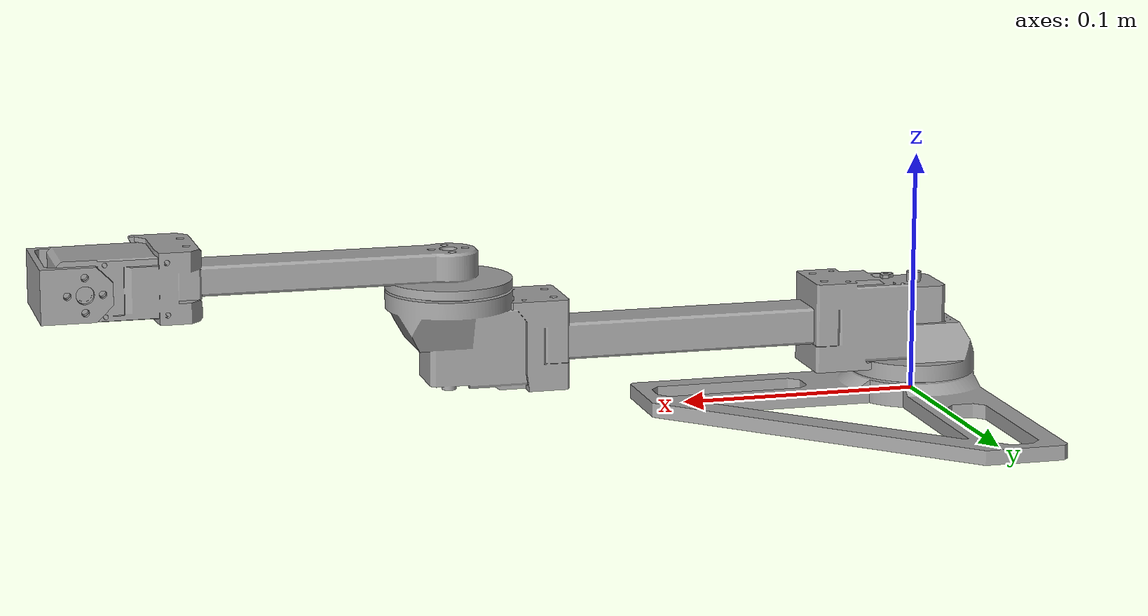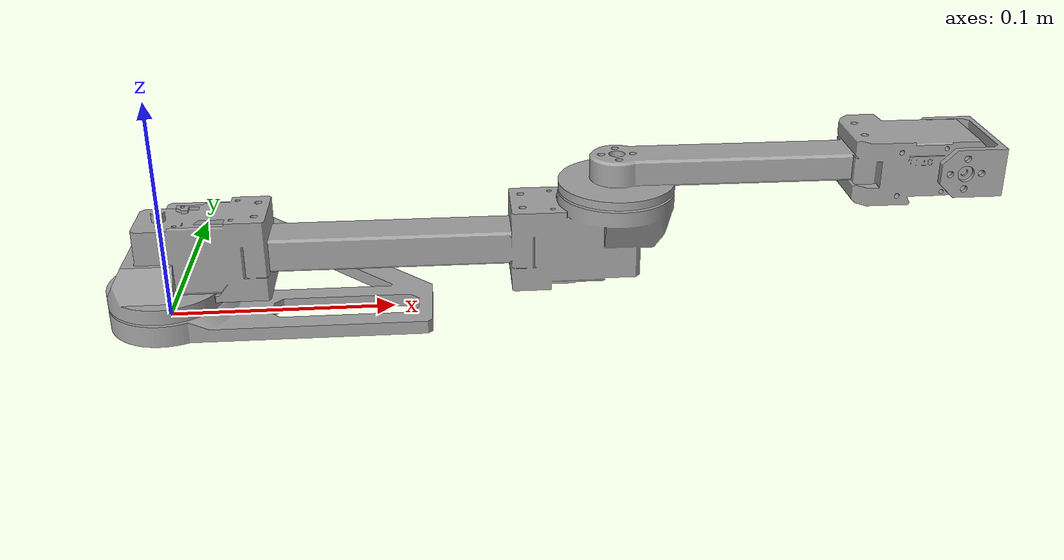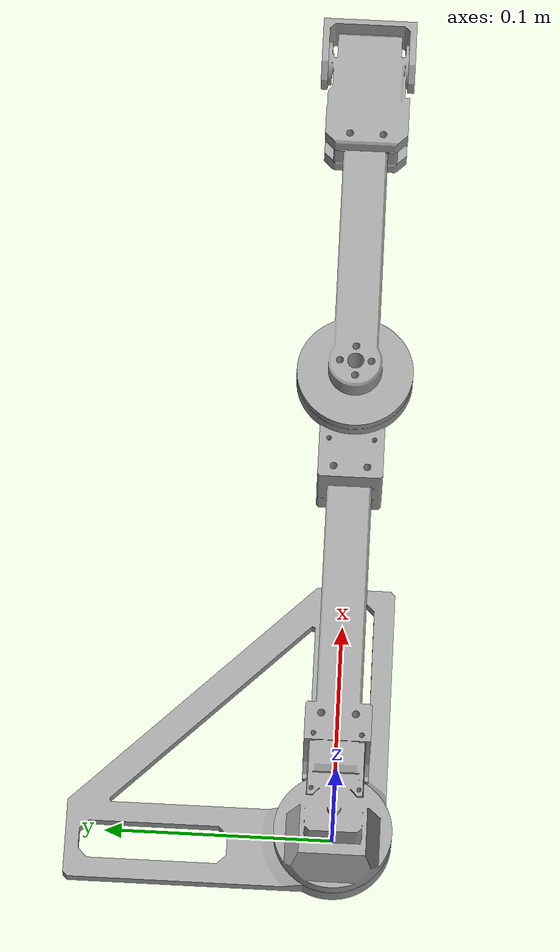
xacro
<?xml version="1.0" ?>
<robot name="bsl_plotter2" xmlns:xacro="http://www.ros.org/wiki/xacro">

<xacro:include filename="$(find bsl_plotter2_description)/urdf/materials.xacro" />
<xacro:include filename="$(find bsl_plotter2_description)/urdf/bsl_plotter2.trans" />
<xacro:include filename="$(find bsl_plotter2_description)/urdf/bsl_plotter2.gazebo" />
<link name="base_link">
  <inertial>
    <origin xyz="0.02576751407527586 0.025767514075266288 0.0015162951999769865" rpy="0 0 0"/>
    <mass value="0.42665443770507006"/>
    <inertia ixx="0.000652" iyy="0.000652" izz="0.001299" ixy="0.000137" iyz="8e-06" ixz="8e-06"/>
  </inertial>
  <visual>
    <origin xyz="0 0 0" rpy="0 0 0"/>
    <geometry>
      <mesh filename="package://bsl_plotter2_description/meshes/base_link.stl" scale="0.001 0.001 0.001"/>
    </geometry>
    <material name="_"/>
  </visual>
  <collision>
    <origin xyz="0 0 0" rpy="0 0 0"/>
    <geometry>
      <mesh filename="package://bsl_plotter2_description/meshes/base_link.stl" scale="0.001 0.001 0.001"/>
    </geometry>
  </collision>
</link>

<link name="link_upper_arm_v5_1">
  <inertial>
    <origin xyz="0.10001075216740007 4.552712739598546e-06 0.018662529334321422" rpy="0 0 0"/>
    <mass value="0.7822732650505565"/>
    <inertia ixx="0.000187" iyy="0.004844" izz="0.004811" ixy="0.0" iyz="0.0" ixz="-0.000445"/>
  </inertial>
  <visual>
    <origin xyz="-0.0 -0.0 -0.012628" rpy="0 0 0"/>
    <geometry>
      <mesh filename="package://bsl_plotter2_description/meshes/link_upper_arm_v5_1.stl" scale="0.001 0.001 0.001"/>
    </geometry>
    <material name="_"/>
  </visual>
  <collision>
    <origin xyz="-0.0 -0.0 -0.012628" rpy="0 0 0"/>
    <geometry>
      <mesh filename="package://bsl_plotter2_description/meshes/link_upper_arm_v5_1.stl" scale="0.001 0.001 0.001"/>
    </geometry>
  </collision>
</link>

<link name="link_fore_arm_v3_1">
  <inertial>
    <origin xyz="0.09531883330237101 6.762503391622247e-05 0.01402398684768523" rpy="0 0 0"/>
    <mass value="0.6037538171570082"/>
    <inertia ixx="8e-05" iyy="0.001714" izz="0.001738" ixy="-2e-06" iyz="-0.0" ixz="-4.2e-05"/>
  </inertial>
  <visual>
    <origin xyz="-0.200015 -0.0 -0.049828" rpy="0 0 0"/>
    <geometry>
      <mesh filename="package://bsl_plotter2_description/meshes/link_fore_arm_v3_1.stl" scale="0.001 0.001 0.001"/>
    </geometry>
    <material name="_"/>
  </visual>
  <collision>
    <origin xyz="-0.200015 -0.0 -0.049828" rpy="0 0 0"/>
    <geometry>
      <mesh filename="package://bsl_plotter2_description/meshes/link_fore_arm_v3_1.stl" scale="0.001 0.001 0.001"/>
    </geometry>
  </collision>
</link>

<link name="link_hand_v4_1">
  <inertial>
    <origin xyz="0.010404677428966724 0.019249999999999205 -1.0531610050712459e-07" rpy="0 0 0"/>
    <mass value="0.036970130267254944"/>
    <inertia ixx="1.2e-05" iyy="4e-06" izz="1.2e-05" ixy="0.0" iyz="0.0" ixz="0.0"/>
  </inertial>
  <visual>
    <origin xyz="-0.350115 0.0186 -0.064546" rpy="0 0 0"/>
    <geometry>
      <mesh filename="package://bsl_plotter2_description/meshes/link_hand_v4_1.stl" scale="0.001 0.001 0.001"/>
    </geometry>
    <material name="_"/>
  </visual>
  <collision>
    <origin xyz="-0.350115 0.0186 -0.064546" rpy="0 0 0"/>
    <geometry>
      <mesh filename="package://bsl_plotter2_description/meshes/link_hand_v4_1.stl" scale="0.001 0.001 0.001"/>
    </geometry>
  </collision>
</link>

<joint name="rev1" type="continuous">
  <origin xyz="0.0 0.0 0.012628" rpy="0 0 0"/>
  <parent link="base_link"/>
  <child link="link_upper_arm_v5_1"/>
  <axis xyz="0.0 0.0 -1.0"/>
</joint>

<joint name="rev2" type="continuous">
  <origin xyz="0.200015 0.0 0.0372" rpy="0 0 0"/>
  <parent link="link_upper_arm_v5_1"/>
  <child link="link_fore_arm_v3_1"/>
  <axis xyz="0.0 -0.0 1.0"/>
</joint>

<joint name="rev3" type="continuous">
  <origin xyz="0.1501 -0.0186 0.014718" rpy="0 0 0"/>
  <parent link="link_fore_arm_v3_1"/>
  <child link="link_hand_v4_1"/>
  <axis xyz="0.0 -1.0 -0.0"/>
</joint>

</robot>

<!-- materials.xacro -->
<robot name="bsl_plotter2" xmlns:xacro="http://www.ros.org/wiki/xacro" >

<material name="silver_default">
  <color rgba="0.700 0.700 0.700 1.000"/>
</material>
<material name="_">
  <color rgba="0.6274509803921569 0.6274509803921569 0.6274509803921569 1.0"/>
</material>

</robot>

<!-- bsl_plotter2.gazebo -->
<robot name="bsl_plotter2" xmlns:xacro="http://www.ros.org/wiki/xacro" >

<xacro:property name="body_color" value="Gazebo/Silver" />

<gazebo>
  <plugin name="control" filename="libgazebo_ros_control.so"/>
</gazebo>
<gazebo reference="base_link">
  <material>${body_color}</material>
  <mu1>0.2</mu1>
  <mu2>0.2</mu2>
  <selfCollide>true</selfCollide>
  <gravity>true</gravity>
</gazebo>

<gazebo reference="link_upper_arm_v5_1">
  <material>${body_color}</material>
  <mu1>0.2</mu1>
  <mu2>0.2</mu2>
  <selfCollide>true</selfCollide>
</gazebo>

<gazebo reference="link_fore_arm_v3_1">
  <material>${body_color}</material>
  <mu1>0.2</mu1>
  <mu2>0.2</mu2>
  <selfCollide>true</selfCollide>
</gazebo>

<gazebo reference="link_hand_v4_1">
  <material>${body_color}</material>
  <mu1>0.2</mu1>
  <mu2>0.2</mu2>
  <selfCollide>true</selfCollide>
</gazebo>

</robot>
